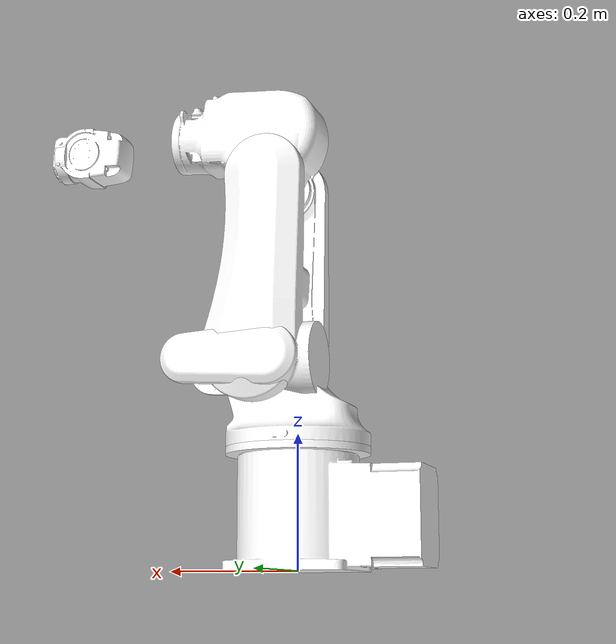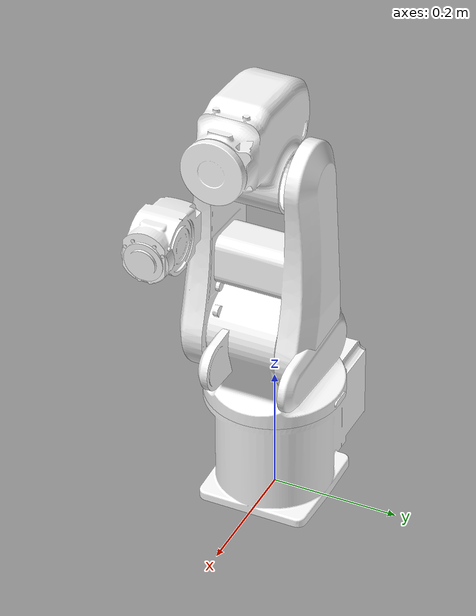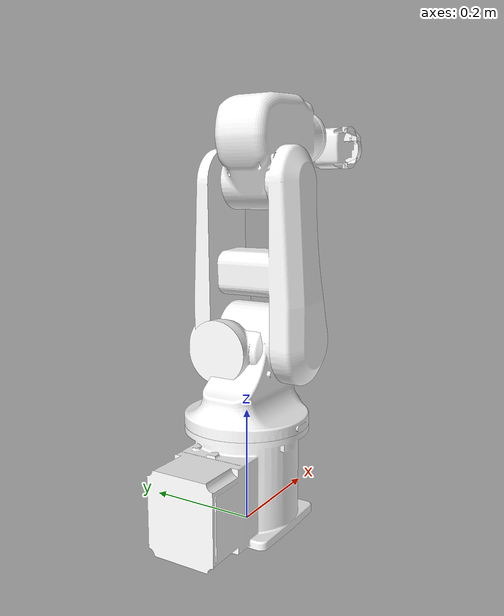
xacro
<?xml version="1.0"?>
<robot xmlns:xacro="http://www.ros.org/wiki/xacro" name="er3">

  <!-- Constants for robot dimensions -->
  <xacro:property name="PI" value="3.1415926535897931"/>
  <xacro:property name="base_radius" value="0.07" />
  <xacro:property name="joint_offset_base" value="0.0" />

  <xacro:property name="radius1" value="0.07" /> <!-- Link 1 -->
  <xacro:property name="height1" value="0.12" />
  <xacro:property name="joint_offset_1" value="0.0" />
  <xacro:property name="j2l_offset1" value="0.0" />

  <xacro:property name="length2" value="0.08" />
  <xacro:property name="width2" value="0.14" />
  <xacro:property name="height2" value="0.12" /> <!-- Link 2 -->
  <xacro:property name="joint_offset_2_x" value="0.050" />
  <xacro:property name="joint_offset_2_z" value="0.3215" />
  <xacro:property name="j2l_offset2" value="0.12" />

  <xacro:property name="length3" value="0.10" />
  <xacro:property name="width3" value="0.10" />
  <xacro:property name="height3" value="0.15" /> <!-- Link 2 -->
  <xacro:property name="joint_offset_3" value="0.270" />
  <xacro:property name="j2l_offset3" value="0.0" />

  <xacro:property name="radius4" value="0.05" />
  <xacro:property name="height4" value="0.17" /> <!-- Link 2 -->
  <xacro:property name="joint_offset_4_y" value="0.299" />
  <xacro:property name="joint_offset_4_x" value="0.070" />
  <xacro:property name="j2l_offset4" value="0.135" />

  <xacro:property name="radius5" value="0.05" />
  <xacro:property name="height5" value="0.1" /> <!-- Link 2 -->
  <xacro:property name="joint_offset_5" value="0.0" />
  <xacro:property name="j2l_offset5" value="0.12" />

  <xacro:property name="radius6" value="0.03" />
  <xacro:property name="height6" value="0.08" /> <!-- Link 6 -->
  <xacro:property name="joint_offset_6" value="0.0" />
  <xacro:property name="j2l_offset6" value="0.09" />

  <xacro:property name="width_tool" value="0.03" />
  <xacro:property name="length_tool" value="0.03" />
  <xacro:property name="height_tool" value="0.08" />
  <xacro:property name="joint_offset_tool" value="0.16" />

  <xacro:property name="width_end" value="0.03" />
  <xacro:property name="length_end" value="0.03" />
  <xacro:property name="height_end" value="0.03" />
  <xacro:property name="joint_offset_end" value="0.04" />

  <xacro:property name="height7" value="0.1" /> <!-- Link 7 -->
  <xacro:property name="eef_height1" value="0.1" /> <!-- Link eef -->
  <xacro:property name="camera_height" value="0.05" /> <!-- Link camera -->
  <xacro:property name="camera_width" value="0.05" /> <!-- Link camera -->
  <xacro:property name="axel_offset" value="0.05" /> <!-- Space btw top of beam and the each joint -->
#  <xacro:property name="mesh_dir" value="/home/i5/" />
  <!-- Import Rviz colors -->

  <!-- Used for fixing robot to Gazebo 'base_link' -->

  <link name="world"/>

  <link name="camera_link">
    <collision>
      <origin rpy="0.0 0 0" xyz="0 0 0"/>
      <geometry>
        <cylinder length="0.0" radius = "0.0"/>
      </geometry>
    </collision>

    <visual>
      <origin rpy="0.0 0 0" xyz="0 0 0"/>
      <geometry>
        <cylinder length="0.0" radius = "0.0"/>
      </geometry>
    </visual>

    <inertial>
      <origin xyz="0 0 0" rpy="0 0 0"/>
      <mass value="0.1"/>
      <inertia
	  ixx="1.0" ixy="0.0" ixz="0.0"
	  iyy="1.0" iyz="0.0"
	  izz="1.0"/>
    </inertial>
  </link>

  <joint name="joint_camera" type="fixed">
    <parent link="world"/>
    <child link="camera_link"/>
    <axis xyz="1 0 0"/>
    <origin xyz="-0.4 0 0.4" rpy="0 0 0"/>
  </joint>

  <joint name="joint_base" type="fixed">
    <parent link="world"/>
    <child link="link_base"/>
    <origin xyz="0 0 ${joint_offset_base}" rpy="0 0 0"/>
  </joint>

    <!-- Link base-->
  <link name="link_base">
    <collision>
      <origin rpy="0.0 0 0" xyz="0 0 0"/>
      <geometry>
        <cylinder length="0.0" radius = "0.0"/>
      </geometry>
    </collision>

    <visual>
      <origin rpy="0.0 0 0" xyz="-0.02488 0.020461 -0.18407"/>
      <geometry>
        <mesh filename="package://er3_description/mesh/base.dae"/>
      </geometry>
    </visual>

    <inertial>
      <origin xyz="0 0 0" rpy="0 0 0"/>
      <mass value="0.1"/>
      <inertia
	  ixx="1.0" ixy="0.0" ixz="0.0"
	  iyy="1.0" iyz="0.0"
	  izz="1.0"/>
    </inertial>
  </link>

  <joint name="joint_1" type="revolute">
    <parent link="link_base"/>
    <child link="link_1"/>
    <axis xyz="0 0 1"/>
    <origin xyz="0 0 ${joint_offset_1}" rpy="0 0 0"/>
    <dynamics damping="0.7"/>
    <limit lower="-2.9147" upper="2.9147" effort="1000.0" velocity="0.1"/>
  </joint>

  <!-- Link 1-->
  <link name="link_1">
    <collision>
      <origin rpy="0.0 0 0" xyz="0 0 0"/>
      <geometry>
        <cylinder length="0.0" radius = "0.0"/>
      </geometry>
    </collision>

    <visual>
      <origin rpy="0.0 0 0" xyz="-0.02488 0.020461 -0.18407"/>
      <geometry>
        <mesh filename="package://er3_description/mesh/1_axis.dae"/>
      </geometry>
    </visual>

    <inertial>
      <origin xyz="0 0 ${j2l_offset1}" rpy="0 0 0"/>
      <mass value="0.1"/>
      <inertia
	  ixx="1.0" ixy="0.0" ixz="0.0"
	  iyy="1.0" iyz="0.0"
	  izz="1.0"/>
    </inertial>
  </link>

  <!-- Joint 2-->
  <joint name="joint_2" type="revolute">
    <parent link="link_1"/>
    <child link="link_2"/>
    <origin xyz="${joint_offset_2_x} 0 ${joint_offset_2_z}" rpy="${-PI/2.0} 0 0"/>
    <axis xyz="0 0 1"/>
    <dynamics damping="0.7"/>
    <limit lower="-2.2689" upper="1.5707963267948966192313216916398" effort="1000.0" velocity="0.1"/>
  </joint>

  <!-- Link 2-->
  <link name="link_2">
    <collision>
      <origin rpy="0.0 0 0" xyz="0 0 0"/>
      <geometry>
        <cylinder length="0.0" radius = "0.0"/>
      </geometry>
    </collision>

    <visual>
      <origin rpy="1.57079632679 0 0" xyz="-0.07351 0.50557 0.019211"/>
      <geometry>
        <mesh filename="package://er3_description/mesh/2_axis.dae"/>
      </geometry>
    </visual>

    <inertial>
      <origin xyz="0 ${-j2l_offset2} 0" rpy="0 0 0"/>
      <mass value="0.1"/>
      <inertia
	  ixx="1.0" ixy="0.0" ixz="0.0"
	  iyy="1.0" iyz="0.0"
	  izz="1.0"/>
    </inertial>
  </link>

  <!-- Joint 3-->
  <joint name="joint_3" type="revolute">
    <parent link="link_2"/>
    <child link="link_3"/>
    <origin xyz="0 ${-joint_offset_3} 0" rpy="0 0 ${-PI/2.0}"/>
    <axis xyz="0 0 1"/>
    <dynamics damping="0.7"/>
    <limit lower="-1.3090" upper="1.832595714594046055769875306913" effort="1000.0" velocity="0.1"/>
  </joint>

  <!-- Link 3-->
  <link name="link_3">
    <collision>
      <origin rpy="0.0 0 0" xyz="0 0 0"/>
      <geometry>
        <cylinder length="0.0" radius = "0.0"/>
      </geometry>
    </collision>
    <visual>
      <origin rpy="1.57079632679 0 1.57079632679" xyz="-0.77346 -0.054782 0.014961"/>
      <geometry>
        <mesh filename="package://er3_description/mesh/3_axis.dae"/>
      </geometry>
    </visual>

    <inertial>
      <origin xyz="0 0 0" rpy="0 0 0"/>
      <mass value="0.1"/>
      <inertia
	  ixx="1.0" ixy="0.0" ixz="0.0"
	  iyy="1.0" iyz="0.0"
	  izz="1.0"/>
    </inertial>
  </link>

  <!-- Joint 4-->
  <joint name="joint_4" type="revolute">
    <parent link="link_3"/>
    <child link="link_4"/>
    <origin xyz="${joint_offset_4_x} ${joint_offset_4_y} 0" rpy="${PI/2.0} 0 0"/>
    <axis xyz="0 0 1"/>
    <dynamics damping="0.7"/>
    <limit lower="-3.1415926535897932384626433832795" upper="3.1415926535897932384626433832795" effort="1000.0" velocity="0.1"/>
  </joint>

  <!-- Link 4-->
  <link name="link_4">
    <collision>
      <origin rpy="0.0 0 0" xyz="0 0 0"/>
      <geometry>
        <cylinder length="0.0" radius = "0.0"/>
      </geometry>
    </collision>

    <visual>
      <origin rpy="0.0 1.5708 0" xyz="-0.870 0.034255 0.473982"/>
      <geometry>
        <mesh filename="package://er3_description/mesh/4_axis.dae"/>
      </geometry>
    </visual>

    <inertial>
      <origin xyz="0 0 ${j2l_offset4}" rpy="0 0 0"/>
      <mass value="0.1"/>
      <inertia
	  ixx="1.0" ixy="0.0" ixz="0.0"
	  iyy="1.0" iyz="0.0"
	  izz="1.0"/>
    </inertial>
  </link>

  <!-- Joint 5-->
  <joint name="joint_5" type="revolute">
    <parent link="link_4"/>
    <child link="link_5"/>
    <axis xyz="0 0 1"/>
    <dynamics damping="0.7"/>
    <origin xyz="0 0 ${joint_offset_5}" rpy="${PI/2.0} 0 0"/>
    <limit lower="-1.9199" upper="1.9199" effort="1000.0" velocity="0.1"/>
  </joint>

  <!-- Link 5-->
  <link name="link_5">
    <collision>
      <origin rpy="0.0 0 0" xyz="0 0 0"/>
      <geometry>
        <cylinder length="0.0" radius = "0.0"/>
      </geometry>
    </collision>

    <visual>
      <origin rpy="-1.57079632679 0 -1.57079632679" xyz="-0.86313 0.347386 -0.01926"/>
      <geometry>
        <mesh filename="package://er3_description/mesh/5_axis.dae"/>
      </geometry>
    </visual>

    <inertial>
      <origin xyz="0 0 0" rpy="0 0 0"/>
      <mass value="0.1"/>
      <inertia
	  ixx="1.0" ixy="0.0" ixz="0.0"
	  iyy="1.0" iyz="0.0"
	  izz="1.0"/>
    </inertial>
  </link>

  <!-- Joint 6-->
  <joint name="joint_6" type="revolute">
    <parent link="link_5"/>
    <child link="link_6"/>
    <axis xyz="0 0 1"/>
    <dynamics damping="0.7"/>
    <origin xyz="0 0 ${joint_offset_6}" rpy="${PI/2.0} 0 0"/>
    <limit lower="-6.283185307180000123139507" upper="6.283185307180000123139507" effort="1000.0" velocity="0.1"/>
  </joint>

  <!-- Link 6-->
  <link name="link_6">
    <collision>
      <origin rpy="0.0 0 0" xyz="0 0 0"/>
      <geometry>
        <cylinder length="0.0" radius = "0.0"/>
      </geometry>
    </collision>

    <visual>
      <origin rpy="0.0 -1.5041 0.0" xyz="0.83608 0.01926 -0.425 "/>
      <geometry>
        <mesh filename="package://er3_description/mesh/6_axis.dae"/>
      </geometry>
    </visual>

    <inertial>
      <origin xyz="0 0 ${j2l_offset6}" rpy="0 0 0"/>
      <mass value="0.1"/>
      <inertia
	  ixx="1.0" ixy="0.0" ixz="0.0"
	  iyy="1.0" iyz="0.0"
	  izz="1.0"/>
    </inertial>
  </link>

  <!-- Joint 7-->
  <joint name="joint_7" type="fixed">
    <parent link="link_6"/>
    <child link="link_end"/>
    <axis xyz="0 0 1"/>
    <origin xyz="0 0 0" rpy="0 0 0"/>
  </joint>

  <!-- Link end-->
  <link name="link_end">
    <collision>
      <origin rpy="0.0 0 0" xyz="0 0 0"/>
      <geometry>
        <cylinder length="0.0" radius = "0.0"/>
      </geometry>
    </collision>
  </link>

</robot>
